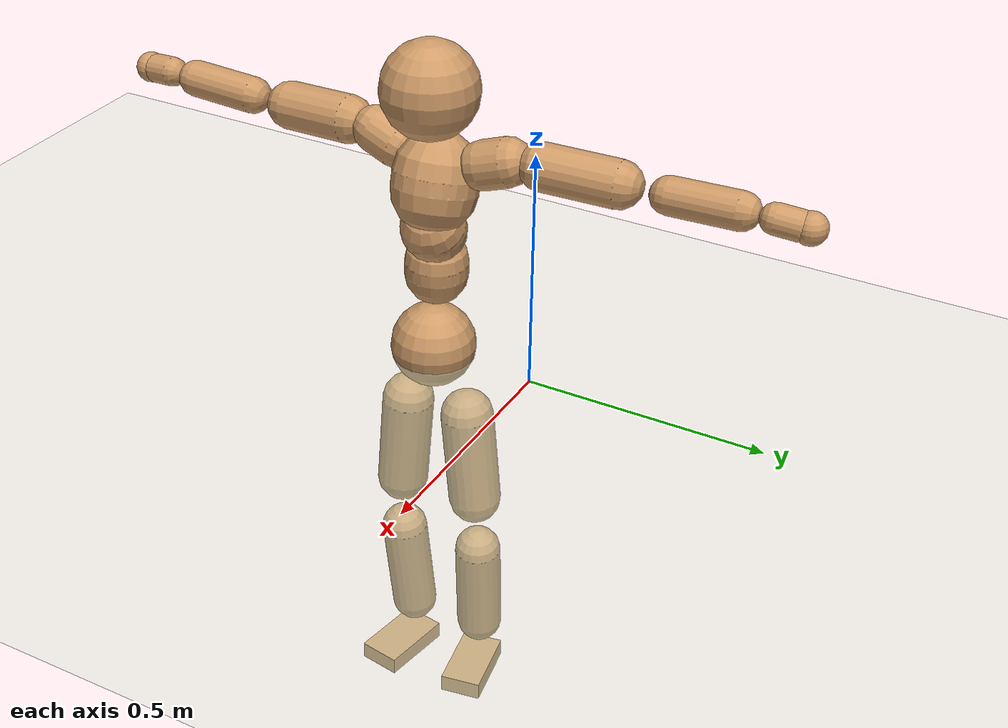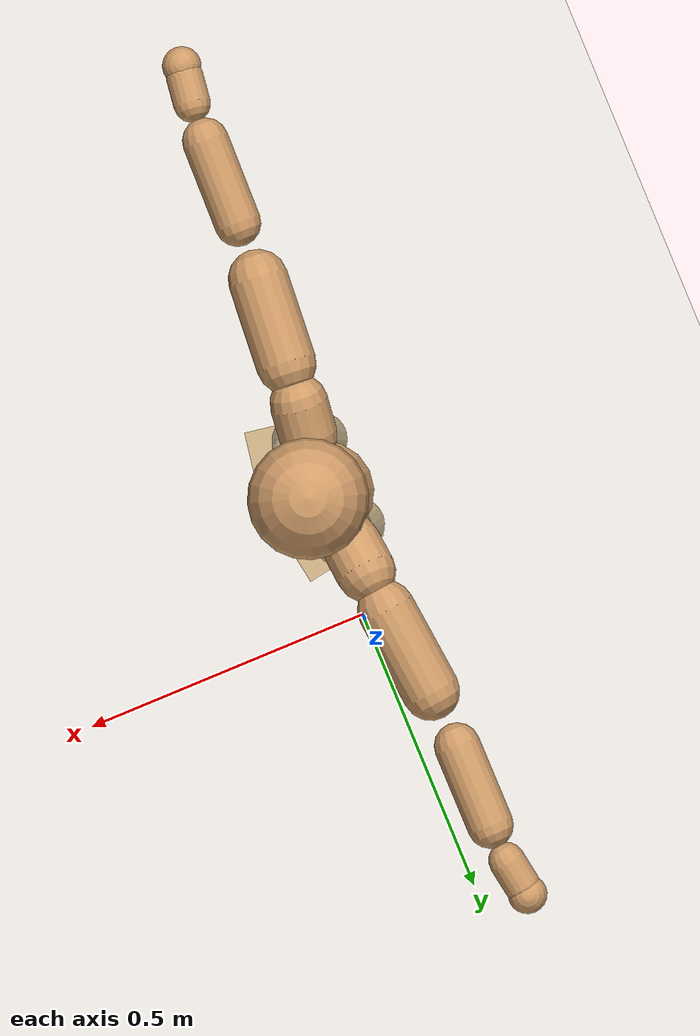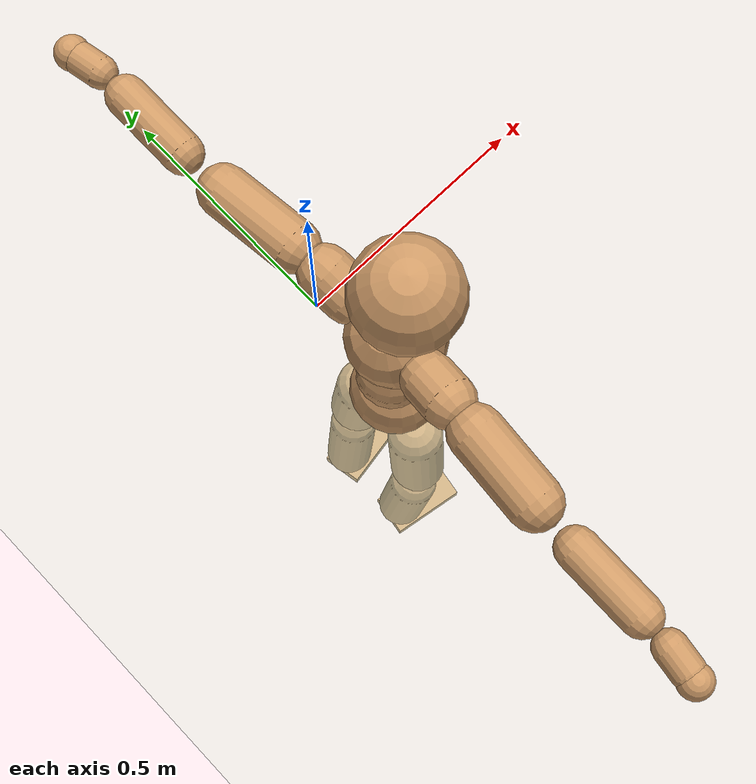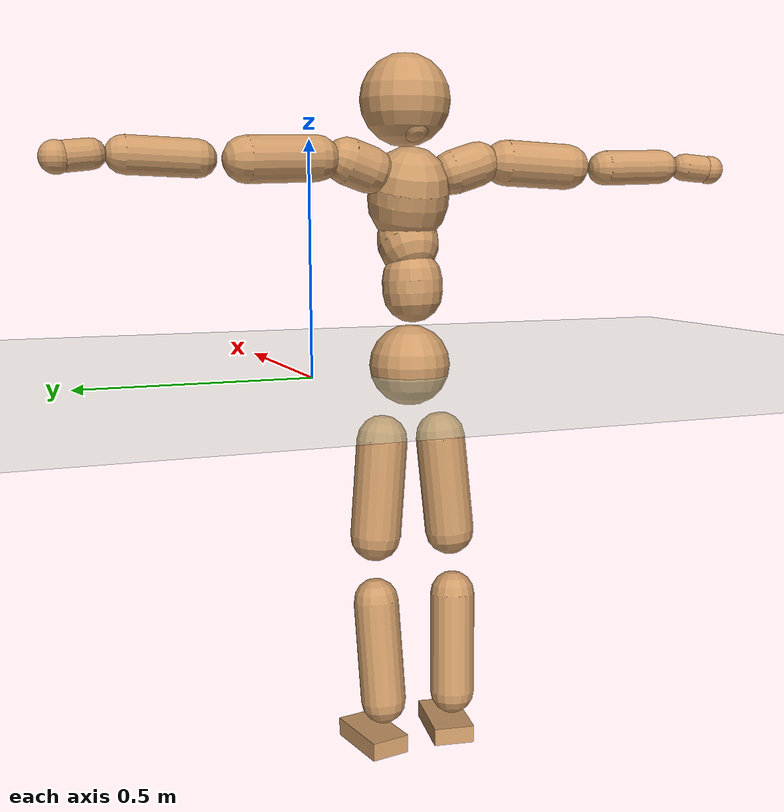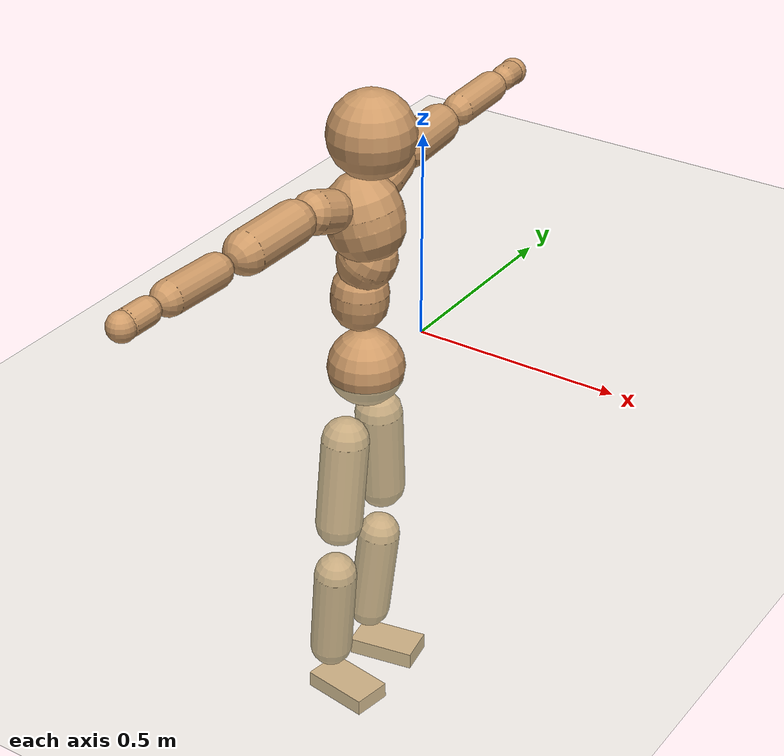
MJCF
<mujoco model="humanoid">
  <compiler coordinate="local"/>
  <default>
    <joint damping="0.0" armature="0.01" stiffness="0.0" limited="true"/>
    <geom conaffinity="1" condim="3" contype="7" margin="0.001" rgba="0.8 0.6 .4 1"/>
  </default>
  <asset>
    <texture type="skybox" builtin="gradient" rgb1=".4 .5 .6" rgb2="0 0 0" width="100" height="100"/>
    <texture builtin="flat" height="1278" mark="cross" markrgb="1 1 1" name="texgeom" random="0.01" rgb1="0.8 0.6 0.4" rgb2="0.8 0.6 0.4" type="cube" width="127"/>
    <texture builtin="checker" height="100" name="texplane" rgb1="0 0 0" rgb2="0.8 0.8 0.8" type="2d" width="100"/>
    <material name="MatPlane" reflectance="0.5" shininess="1" specular="1" texrepeat="60 60" texture="texplane"/>
    <material name="geom" texture="texgeom" texuniform="true"/>
  </asset>
  <worldbody>
    <light cutoff="100" diffuse="1 1 1" dir="-0 0 -1.3" directional="true" exponent="1" pos="0 0 1.3" specular=".1 .1 .1"/>
    <geom conaffinity="1" condim="3" name="floor" pos="0 0 0" rgba="0.8 0.9 0.8 1" size="100 100 .2" type="plane" material="MatPlane"/>
    <body name="Pelvis" pos="-0.0034 -0.2244 0.0194">
      <freejoint name="Pelvis"/>
      <geom type="sphere" contype="1" conaffinity="1" density="500" size="0.0892" pos="0.0000 0.0000 0.0000" name="Pelvis"/>
      <body name="L_Hip" pos="-0.0133 0.0656 -0.0914">
        <joint name="L_Hip_x" type="hinge" pos="0 0 0" axis="1 0 0" stiffness="800" damping="80" armature="0.02" range="-180.0000 180.0000"/>
        <joint name="L_Hip_y" type="hinge" pos="0 0 0" axis="0 1 0" stiffness="800" damping="80" armature="0.02" range="-180.0000 180.0000"/>
        <joint name="L_Hip_z" type="hinge" pos="0 0 0" axis="0 0 1" stiffness="800" damping="80" armature="0.02" range="-180.0000 180.0000"/>
        <geom type="capsule" contype="1" conaffinity="1" density="500" fromto="-0.0015 0.0059 -0.0714 -0.0062 0.0234 -0.2854" size="0.0561" name="L_Hip"/>
        <body name="L_Knee" pos="-0.0077 0.0293 -0.3568">
          <joint name="L_Knee_x" type="hinge" pos="0 0 0" axis="1 0 0" stiffness="800" damping="80" armature="0.02" range="-180.0000 180.0000"/>
          <joint name="L_Knee_y" type="hinge" pos="0 0 0" axis="0 1 0" stiffness="800" damping="80" armature="0.02" range="-180.0000 180.0000"/>
          <joint name="L_Knee_z" type="hinge" pos="0 0 0" axis="0 0 1" stiffness="800" damping="80" armature="0.02" range="-180.0000 180.0000"/>
          <geom type="capsule" contype="1" conaffinity="1" density="500" fromto="-0.0083 -0.0026 -0.0758 -0.0333 -0.0103 -0.3031" size="0.0501" name="L_Knee"/>
          <body name="L_Ankle" pos="-0.0416 -0.0128 -0.3789">
            <joint name="L_Ankle_x" type="hinge" pos="0 0 0" axis="1 0 0" stiffness="800" damping="80" armature="0.02" range="-180.0000 180.0000"/>
            <joint name="L_Ankle_y" type="hinge" pos="0 0 0" axis="0 1 0" stiffness="800" damping="80" armature="0.02" range="-180.0000 180.0000"/>
            <joint name="L_Ankle_z" type="hinge" pos="0 0 0" axis="0 0 1" stiffness="800" damping="80" armature="0.02" range="-180.0000 180.0000"/>
            <geom type="box" contype="1" conaffinity="1" density="500" pos="0.0566 0.0099 -0.0270" size="0.0801 0.0448 0.0204" quat="0.9963 0.0000 0.0000 0.0862" name="L_Ankle"/>
            <body name="L_Toe" pos="0.1133 0.0197 -0.0539">
              <joint name="L_Toe_x" type="hinge" pos="0 0 0" axis="1 0 0" stiffness="500" damping="50" armature="0.02" range="-180.0000 180.0000"/>
              <joint name="L_Toe_y" type="hinge" pos="0 0 0" axis="0 1 0" stiffness="500" damping="50" armature="0.02" range="-180.0000 180.0000"/>
              <joint name="L_Toe_z" type="hinge" pos="0 0 0" axis="0 0 1" stiffness="500" damping="50" armature="0.02" range="-180.0000 180.0000"/>
              <geom type="box" contype="1" conaffinity="1" density="500" pos="0.0000 0.0000 0.0265" size="0.001 0.0023 0.001" quat="0.9957 0.0000 0.0000 0.0931" name="L_Toe"/>
            </body>
          </body>
        </body>
      </body>
      <body name="R_Hip" pos="-0.0089 -0.063 -0.0916">
        <joint name="R_Hip_x" type="hinge" pos="0 0 0" axis="1 0 0" stiffness="800" damping="80" armature="0.02" range="-180.0000 180.0000"/>
        <joint name="R_Hip_y" type="hinge" pos="0 0 0" axis="0 1 0" stiffness="800" damping="80" armature="0.02" range="-180.0000 180.0000"/>
        <joint name="R_Hip_z" type="hinge" pos="0 0 0" axis="0 0 1" stiffness="800" damping="80" armature="0.02" range="-180.0000 180.0000"/>
        <geom type="capsule" contype="1" conaffinity="1" density="500" fromto="-0.0021 -0.0071 -0.0725 -0.0084 -0.0282 -0.2898" size="0.0554" name="R_Hip"/>
        <body name="R_Knee" pos="-0.0105 -0.0353 -0.3623">
          <joint name="R_Knee_x" type="hinge" pos="0 0 0" axis="1 0 0" stiffness="800" damping="80" armature="0.02" range="-180.0000 180.0000"/>
          <joint name="R_Knee_y" type="hinge" pos="0 0 0" axis="0 1 0" stiffness="800" damping="80" armature="0.02" range="-180.0000 180.0000"/>
          <joint name="R_Knee_z" type="hinge" pos="0 0 0" axis="0 0 1" stiffness="800" damping="80" armature="0.02" range="-180.0000 180.0000"/>
          <geom type="capsule" contype="1" conaffinity="1" density="500" fromto="-0.0078 0.0031 -0.0755 -0.0312 0.0123 -0.3020" size="0.0503" name="R_Knee"/>
          <body name="R_Ankle" pos="-0.039 0.0154 -0.3775">
            <joint name="R_Ankle_x" type="hinge" pos="0 0 0" axis="1 0 0" stiffness="800" damping="80" armature="0.02" range="-180.0000 180.0000"/>
            <joint name="R_Ankle_y" type="hinge" pos="0 0 0" axis="0 1 0" stiffness="800" damping="80" armature="0.02" range="-180.0000 180.0000"/>
            <joint name="R_Ankle_z" type="hinge" pos="0 0 0" axis="0 0 1" stiffness="800" damping="80" armature="0.02" range="-180.0000 180.0000"/>
            <geom type="box" contype="1" conaffinity="1" density="500" pos="0.0585 -0.0095 -0.0229" size="0.0822 0.0464 0.0196" quat="0.9968 0.0000 0.0000 -0.0803" name="R_Ankle"/>
            <body name="R_Toe" pos="0.117 -0.019 -0.0458">
              <joint name="R_Toe_x" type="hinge" pos="0 0 0" axis="1 0 0" stiffness="500" damping="50" armature="0.02" range="-180.0000 180.0000"/>
              <joint name="R_Toe_y" type="hinge" pos="0 0 0" axis="0 1 0" stiffness="500" damping="50" armature="0.02" range="-180.0000 180.0000"/>
              <joint name="R_Toe_z" type="hinge" pos="0 0 0" axis="0 0 1" stiffness="500" damping="50" armature="0.02" range="-180.0000 180.0000"/>
              <geom type="box" contype="1" conaffinity="1" density="500" pos="0.0000 0.0000 0.0252" size="0.0009 0.0023 0.0011" quat="0.9975 0.0000 0.0000 -0.0708" name="R_Toe"/>
            </body>
          </body>
        </body>
      </body>
      <body name="Torso" pos="-0.0164 -0.0028 0.1056">
        <joint name="Torso_x" type="hinge" pos="0 0 0" axis="1 0 0" stiffness="1000" damping="100" armature="0.02" range="-180.0000 180.0000"/>
        <joint name="Torso_y" type="hinge" pos="0 0 0" axis="0 1 0" stiffness="1000" damping="100" armature="0.02" range="-180.0000 180.0000"/>
        <joint name="Torso_z" type="hinge" pos="0 0 0" axis="0 0 1" stiffness="1000" damping="100" armature="0.02" range="-180.0000 180.0000"/>
        <geom type="capsule" contype="1" conaffinity="1" density="500" fromto="0.0021 0.0030 0.0827 0.0014 0.0020 0.0552" size="0.065751" name="Torso"/>
        <body name="Spine" pos="0.0035 0.0049 0.1379">
          <joint name="Spine_x" type="hinge" pos="0 0 0" axis="1 0 0" stiffness="1000" damping="100" armature="0.02" range="-180.0000 180.0000"/>
          <joint name="Spine_y" type="hinge" pos="0 0 0" axis="0 1 0" stiffness="1000" damping="100" armature="0.02" range="-180.0000 180.0000"/>
          <joint name="Spine_z" type="hinge" pos="0 0 0" axis="0 0 1" stiffness="1000" damping="100" armature="0.02" range="-180.0000 180.0000"/>
          <geom type="capsule" contype="1" conaffinity="1" density="500" fromto="0.0187 0.0017 0.0311 0.0124 0.0012 0.0207" size="0.066867" name="Spine"/>
          <body name="Chest" pos="0.0311 0.0029 0.0518">
            <joint name="Chest_x" type="hinge" pos="0 0 0" axis="1 0 0" stiffness="1000" damping="100" armature="0.02" range="-180.0000 180.0000"/>
            <joint name="Chest_y" type="hinge" pos="0 0 0" axis="0 1 0" stiffness="1000" damping="100" armature="0.02" range="-180.0000 180.0000"/>
            <joint name="Chest_z" type="hinge" pos="0 0 0" axis="0 0 1" stiffness="1000" damping="100" armature="0.02" range="-180.0000 180.0000"/>
            <geom type="capsule" contype="1" conaffinity="1" density="500" fromto="-0.0264 -0.0008 0.0891 -0.0176 -0.0006 0.0594" size="0.088257" name="Chest"/>
            <body name="Neck" pos="-0.053 -0.0029 0.21">
              <joint name="Neck_x" type="hinge" pos="0 0 0" axis="1 0 0" stiffness="500" damping="50" armature="0.02" range="-180.0000 180.0000"/>
              <joint name="Neck_y" type="hinge" pos="0 0 0" axis="0 1 0" stiffness="500" damping="50" armature="0.02" range="-180.0000 180.0000"/>
              <joint name="Neck_z" type="hinge" pos="0 0 0" axis="0 0 1" stiffness="500" damping="50" armature="0.02" range="-180.0000 180.0000"/>
              <geom type="capsule" contype="1" conaffinity="1" density="500" fromto="0.0101 0.0006 0.0129 0.0403 0.0022 0.0514" size="0.038781" name="Neck"/>
              <body name="Head" pos="0.0503 0.0028 0.0643">
                <joint name="Head_x" type="hinge" pos="0 0 0" axis="1 0 0" stiffness="500" damping="50" armature="0.02" range="-180.0000 180.0000"/>
                <joint name="Head_y" type="hinge" pos="0 0 0" axis="0 1 0" stiffness="500" damping="50" armature="0.02" range="-180.0000 180.0000"/>
                <joint name="Head_z" type="hinge" pos="0 0 0" axis="0 0 1" stiffness="500" damping="50" armature="0.02" range="-180.0000 180.0000"/>
                <geom type="sphere" contype="1" conaffinity="1" density="500" size="0.0985" pos="0.0000 0.0000 0.0000" name="Head"/>
              </body>
            </body>
            <body name="L_Thorax" pos="-0.038 0.0768 0.1188">
              <joint name="L_Thorax_x" type="hinge" pos="0 0 0" axis="1 0 0" stiffness="500" damping="50" armature="0.02" range="-180.0000 180.0000"/>
              <joint name="L_Thorax_y" type="hinge" pos="0 0 0" axis="0 1 0" stiffness="500" damping="50" armature="0.02" range="-180.0000 180.0000"/>
              <joint name="L_Thorax_z" type="hinge" pos="0 0 0" axis="0 0 1" stiffness="500" damping="50" armature="0.02" range="-180.0000 180.0000"/>
              <geom type="capsule" contype="1" conaffinity="1" density="500" fromto="-0.0017 0.0174 0.0057 -0.0067 0.0698 0.0230" size="0.0495" name="L_Thorax"/>
              <body name="L_Shoulder" pos="-0.0084 0.0872 0.0287">
                <joint name="L_Shoulder_x" type="hinge" pos="0 0 0" axis="1 0 0" stiffness="500" damping="50" armature="0.02" range="-720.0000 720.0000"/>
                <joint name="L_Shoulder_y" type="hinge" pos="0 0 0" axis="0 1 0" stiffness="500" damping="50" armature="0.02" range="-720.0000 720.0000"/>
                <joint name="L_Shoulder_z" type="hinge" pos="0 0 0" axis="0 0 1" stiffness="500" damping="50" armature="0.02" range="-720.0000 720.0000"/>
                <geom type="capsule" contype="1" conaffinity="1" density="500" fromto="-0.0055 0.0508 -0.0020 -0.0222 0.2032 -0.0079" size="0.0478" name="L_Shoulder"/>
                <body name="L_Elbow" pos="-0.0277 0.254 -0.0099">
                  <joint name="L_Elbow_x" type="hinge" pos="0 0 0" axis="1 0 0" stiffness="500" damping="50" armature="0.02" range="-720.0000 720.0000"/>
                  <joint name="L_Elbow_y" type="hinge" pos="0 0 0" axis="0 1 0" stiffness="500" damping="50" armature="0.02" range="-720.0000 720.0000"/>
                  <joint name="L_Elbow_z" type="hinge" pos="0 0 0" axis="0 0 1" stiffness="500" damping="50" armature="0.02" range="-720.0000 720.0000"/>
                  <geom type="capsule" contype="1" conaffinity="1" density="500" fromto="-0.0001 0.0470 0.0016 -0.0006 0.1879 0.0062" size="0.0379" name="L_Elbow"/>
                  <body name="L_Wrist" pos="-0.0007 0.2349 0.0078">
                    <joint name="L_Wrist_x" type="hinge" pos="0 0 0" axis="1 0 0" stiffness="300" damping="30" armature="0.02" range="-180.0000 180.0000"/>
                    <joint name="L_Wrist_y" type="hinge" pos="0 0 0" axis="0 1 0" stiffness="300" damping="30" armature="0.02" range="-180.0000 180.0000"/>
                    <joint name="L_Wrist_z" type="hinge" pos="0 0 0" axis="0 0 1" stiffness="300" damping="30" armature="0.02" range="-180.0000 180.0000"/>
                    <geom type="capsule" contype="1" conaffinity="1" density="500" fromto="-0.0026 0.0160 -0.0019 -0.0106 0.0642 -0.0077" size="0.0302" name="L_Wrist"/>
                    <body name="L_Hand" pos="-0.0132 0.0802 -0.0096">
                      <joint name="L_Hand_x" type="hinge" pos="0 0 0" axis="1 0 0" stiffness="300" damping="30" armature="0.02" range="-180.0000 180.0000"/>
                      <joint name="L_Hand_y" type="hinge" pos="0 0 0" axis="0 1 0" stiffness="300" damping="30" armature="0.02" range="-180.0000 180.0000"/>
                      <joint name="L_Hand_z" type="hinge" pos="0 0 0" axis="0 0 1" stiffness="300" damping="30" armature="0.02" range="-180.0000 180.0000"/>
                      <geom type="sphere" contype="1" conaffinity="1" density="500" size="0.0323" pos="0.0000 0.0000 0.0000" name="L_Hand"/>
                    </body>
                  </body>
                </body>
              </body>
            </body>
            <body name="R_Thorax" pos="-0.0411 -0.0781 0.1167">
              <joint name="R_Thorax_x" type="hinge" pos="0 0 0" axis="1 0 0" stiffness="500" damping="50" armature="0.02" range="-180.0000 180.0000"/>
              <joint name="R_Thorax_y" type="hinge" pos="0 0 0" axis="0 1 0" stiffness="500" damping="50" armature="0.02" range="-180.0000 180.0000"/>
              <joint name="R_Thorax_z" type="hinge" pos="0 0 0" axis="0 0 1" stiffness="500" damping="50" armature="0.02" range="-180.0000 180.0000"/>
              <geom type="capsule" contype="1" conaffinity="1" density="500" fromto="-0.0019 -0.0179 0.0060 -0.0077 -0.0718 0.0240" size="0.0483" name="R_Thorax"/>
              <body name="R_Shoulder" pos="-0.0096 -0.0897 0.03">
                <joint name="R_Shoulder_x" type="hinge" pos="0 0 0" axis="1 0 0" stiffness="500" damping="50" armature="0.02" range="-720.0000 720.0000"/>
                <joint name="R_Shoulder_y" type="hinge" pos="0 0 0" axis="0 1 0" stiffness="500" damping="50" armature="0.02" range="-720.0000 720.0000"/>
                <joint name="R_Shoulder_z" type="hinge" pos="0 0 0" axis="0 0 1" stiffness="500" damping="50" armature="0.02" range="-720.0000 720.0000"/>
                <geom type="capsule" contype="1" conaffinity="1" density="500" fromto="-0.0034 -0.0486 -0.0024 -0.0138 -0.1945 -0.0094" size="0.0495" name="R_Shoulder"/>
                <body name="R_Elbow" pos="-0.0172 -0.2431 -0.0118">
                  <joint name="R_Elbow_x" type="hinge" pos="0 0 0" axis="1 0 0" stiffness="500" damping="50" armature="0.02" range="-720.0000 720.0000"/>
                  <joint name="R_Elbow_y" type="hinge" pos="0 0 0" axis="0 1 0" stiffness="500" damping="50" armature="0.02" range="-720.0000 720.0000"/>
                  <joint name="R_Elbow_z" type="hinge" pos="0 0 0" axis="0 0 1" stiffness="500" damping="50" armature="0.02" range="-720.0000 720.0000"/>
                  <geom type="capsule" contype="1" conaffinity="1" density="500" fromto="-0.0008 -0.0481 0.0017 -0.0033 -0.1926 0.0067" size="0.0381" name="R_Elbow"/>
                  <body name="R_Wrist" pos="-0.0041 -0.2407 0.0083">
                    <joint name="R_Wrist_x" type="hinge" pos="0 0 0" axis="1 0 0" stiffness="300" damping="30" armature="0.02" range="-180.0000 180.0000"/>
                    <joint name="R_Wrist_y" type="hinge" pos="0 0 0" axis="0 1 0" stiffness="300" damping="30" armature="0.02" range="-180.0000 180.0000"/>
                    <joint name="R_Wrist_z" type="hinge" pos="0 0 0" axis="0 0 1" stiffness="300" damping="30" armature="0.02" range="-180.0000 180.0000"/>
                    <geom type="capsule" contype="1" conaffinity="1" density="500" fromto="-0.0020 -0.0160 -0.0014 -0.0082 -0.0639 -0.0057" size="0.0307" name="R_Wrist"/>
                    <body name="R_Hand" pos="-0.0102 -0.0799 -0.0071">
                      <joint name="R_Hand_x" type="hinge" pos="0 0 0" axis="1 0 0" stiffness="300" damping="30" armature="0.02" range="-180.0000 180.0000"/>
                      <joint name="R_Hand_y" type="hinge" pos="0 0 0" axis="0 1 0" stiffness="300" damping="30" armature="0.02" range="-180.0000 180.0000"/>
                      <joint name="R_Hand_z" type="hinge" pos="0 0 0" axis="0 0 1" stiffness="300" damping="30" armature="0.02" range="-180.0000 180.0000"/>
                      <geom type="sphere" contype="1" conaffinity="1" density="500" size="0.0321" pos="0.0000 0.0000 0.0000" name="R_Hand"/>
                    </body>
                  </body>
                </body>
              </body>
            </body>
          </body>
        </body>
      </body>
    </body>
  </worldbody>
  <actuator>
    <motor name="L_Hip_x" joint="L_Hip_x" gear="500"/>
    <motor name="L_Hip_y" joint="L_Hip_y" gear="500"/>
    <motor name="L_Hip_z" joint="L_Hip_z" gear="500"/>
    <motor name="L_Knee_x" joint="L_Knee_x" gear="500"/>
    <motor name="L_Knee_y" joint="L_Knee_y" gear="500"/>
    <motor name="L_Knee_z" joint="L_Knee_z" gear="500"/>
    <motor name="L_Ankle_x" joint="L_Ankle_x" gear="500"/>
    <motor name="L_Ankle_y" joint="L_Ankle_y" gear="500"/>
    <motor name="L_Ankle_z" joint="L_Ankle_z" gear="500"/>
    <motor name="L_Toe_x" joint="L_Toe_x" gear="500"/>
    <motor name="L_Toe_y" joint="L_Toe_y" gear="500"/>
    <motor name="L_Toe_z" joint="L_Toe_z" gear="500"/>
    <motor name="R_Hip_x" joint="R_Hip_x" gear="500"/>
    <motor name="R_Hip_y" joint="R_Hip_y" gear="500"/>
    <motor name="R_Hip_z" joint="R_Hip_z" gear="500"/>
    <motor name="R_Knee_x" joint="R_Knee_x" gear="500"/>
    <motor name="R_Knee_y" joint="R_Knee_y" gear="500"/>
    <motor name="R_Knee_z" joint="R_Knee_z" gear="500"/>
    <motor name="R_Ankle_x" joint="R_Ankle_x" gear="500"/>
    <motor name="R_Ankle_y" joint="R_Ankle_y" gear="500"/>
    <motor name="R_Ankle_z" joint="R_Ankle_z" gear="500"/>
    <motor name="R_Toe_x" joint="R_Toe_x" gear="500"/>
    <motor name="R_Toe_y" joint="R_Toe_y" gear="500"/>
    <motor name="R_Toe_z" joint="R_Toe_z" gear="500"/>
    <motor name="Torso_x" joint="Torso_x" gear="500"/>
    <motor name="Torso_y" joint="Torso_y" gear="500"/>
    <motor name="Torso_z" joint="Torso_z" gear="500"/>
    <motor name="Spine_x" joint="Spine_x" gear="500"/>
    <motor name="Spine_y" joint="Spine_y" gear="500"/>
    <motor name="Spine_z" joint="Spine_z" gear="500"/>
    <motor name="Chest_x" joint="Chest_x" gear="500"/>
    <motor name="Chest_y" joint="Chest_y" gear="500"/>
    <motor name="Chest_z" joint="Chest_z" gear="500"/>
    <motor name="Neck_x" joint="Neck_x" gear="500"/>
    <motor name="Neck_y" joint="Neck_y" gear="500"/>
    <motor name="Neck_z" joint="Neck_z" gear="500"/>
    <motor name="Head_x" joint="Head_x" gear="500"/>
    <motor name="Head_y" joint="Head_y" gear="500"/>
    <motor name="Head_z" joint="Head_z" gear="500"/>
    <motor name="L_Thorax_x" joint="L_Thorax_x" gear="500"/>
    <motor name="L_Thorax_y" joint="L_Thorax_y" gear="500"/>
    <motor name="L_Thorax_z" joint="L_Thorax_z" gear="500"/>
    <motor name="L_Shoulder_x" joint="L_Shoulder_x" gear="500"/>
    <motor name="L_Shoulder_y" joint="L_Shoulder_y" gear="500"/>
    <motor name="L_Shoulder_z" joint="L_Shoulder_z" gear="500"/>
    <motor name="L_Elbow_x" joint="L_Elbow_x" gear="500"/>
    <motor name="L_Elbow_y" joint="L_Elbow_y" gear="500"/>
    <motor name="L_Elbow_z" joint="L_Elbow_z" gear="500"/>
    <motor name="L_Wrist_x" joint="L_Wrist_x" gear="500"/>
    <motor name="L_Wrist_y" joint="L_Wrist_y" gear="500"/>
    <motor name="L_Wrist_z" joint="L_Wrist_z" gear="500"/>
    <motor name="L_Hand_x" joint="L_Hand_x" gear="500"/>
    <motor name="L_Hand_y" joint="L_Hand_y" gear="500"/>
    <motor name="L_Hand_z" joint="L_Hand_z" gear="500"/>
    <motor name="R_Thorax_x" joint="R_Thorax_x" gear="500"/>
    <motor name="R_Thorax_y" joint="R_Thorax_y" gear="500"/>
    <motor name="R_Thorax_z" joint="R_Thorax_z" gear="500"/>
    <motor name="R_Shoulder_x" joint="R_Shoulder_x" gear="500"/>
    <motor name="R_Shoulder_y" joint="R_Shoulder_y" gear="500"/>
    <motor name="R_Shoulder_z" joint="R_Shoulder_z" gear="500"/>
    <motor name="R_Elbow_x" joint="R_Elbow_x" gear="500"/>
    <motor name="R_Elbow_y" joint="R_Elbow_y" gear="500"/>
    <motor name="R_Elbow_z" joint="R_Elbow_z" gear="500"/>
    <motor name="R_Wrist_x" joint="R_Wrist_x" gear="500"/>
    <motor name="R_Wrist_y" joint="R_Wrist_y" gear="500"/>
    <motor name="R_Wrist_z" joint="R_Wrist_z" gear="500"/>
    <motor name="R_Hand_x" joint="R_Hand_x" gear="500"/>
    <motor name="R_Hand_y" joint="R_Hand_y" gear="500"/>
    <motor name="R_Hand_z" joint="R_Hand_z" gear="500"/>
  </actuator>
  <contact>
    <exclude body1="Torso" body2="Chest"/>
    <exclude body1="Head" body2="Chest"/>
    <exclude body1="R_Knee" body2="R_Toe"/>
    <exclude body1="R_Knee" body2="L_Ankle"/>
    <exclude body1="R_Knee" body2="L_Toe"/>
    <exclude body1="L_Knee" body2="L_Toe"/>
    <exclude body1="L_Knee" body2="R_Ankle"/>
    <exclude body1="L_Knee" body2="R_Toe"/>
    <exclude body1="L_Shoulder" body2="Chest"/>
    <exclude body1="R_Shoulder" body2="Chest"/>
  </contact>
  <sensor/>
  <size njmax="700" nconmax="700"/>
</mujoco>
